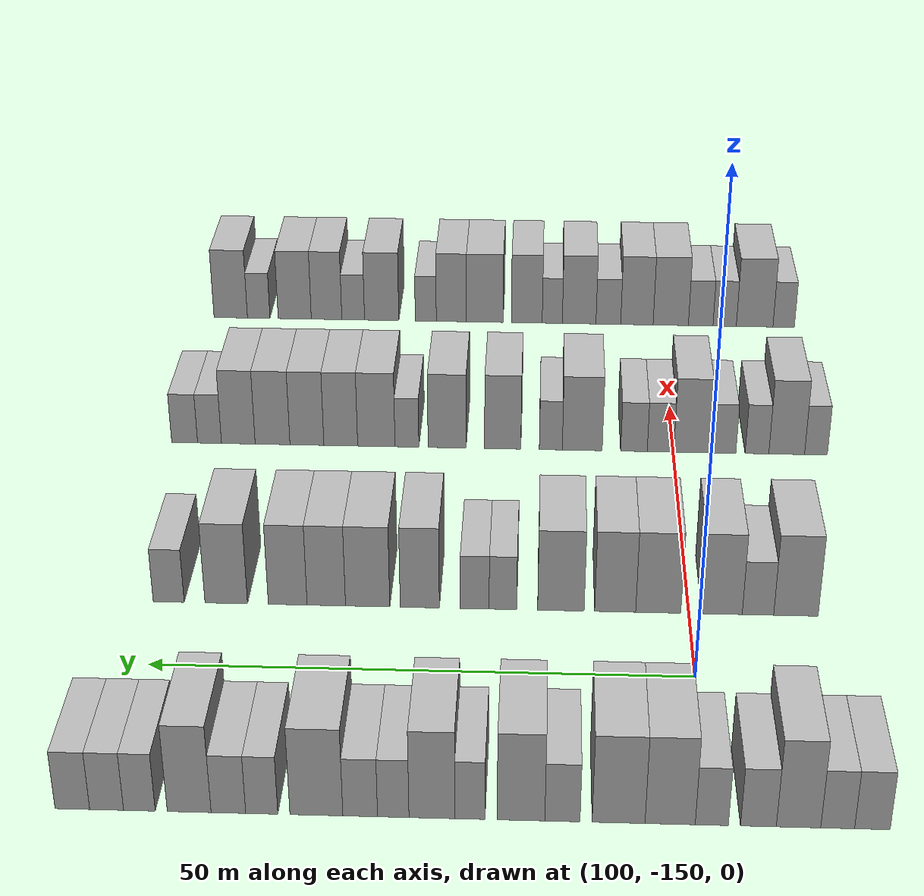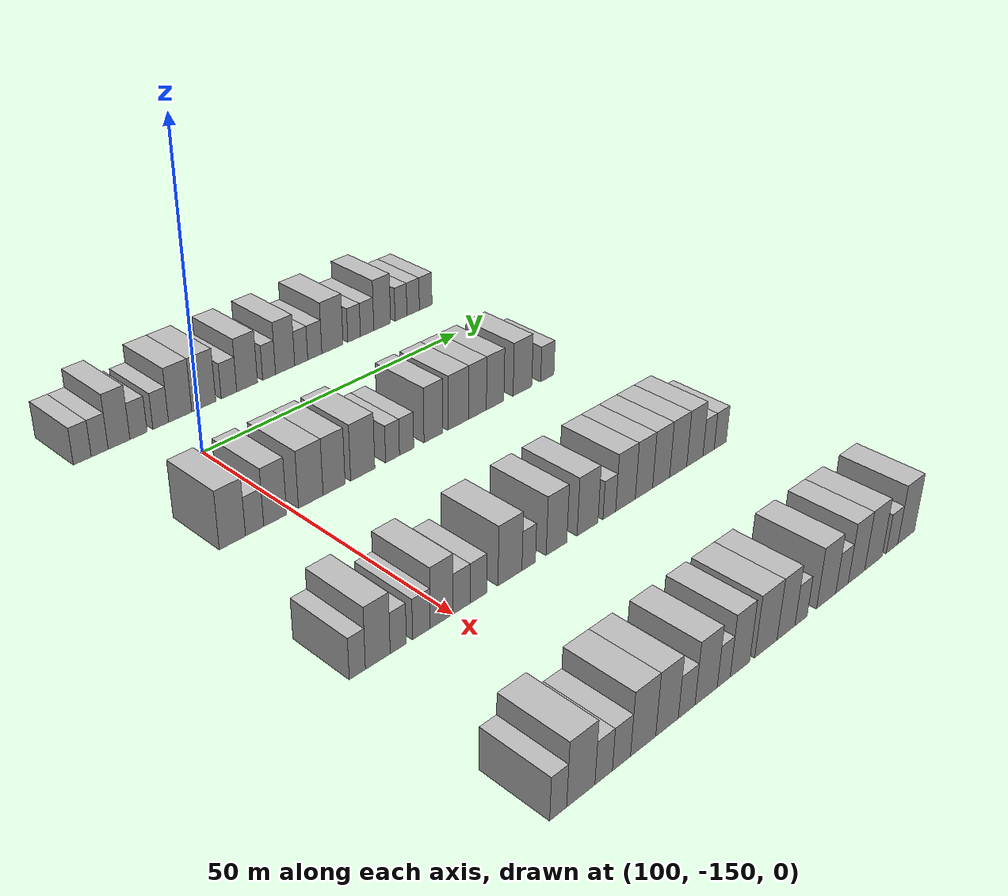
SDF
<sdf version="1.6">
 <world name="default">
  <model name="building_536">
   <static>1</static>
   <pose>85.0000 -163.2497 0 0.000000 0.000000 0.000000</pose>
   <link name="link">
    <pose>0 0 3.00 0 0 0</pose>
    <collision name="collision"><geometry><box><size>10.0000 2.8999 6.0000</size></box></geometry></collision>
    <visual name="visual">
     <cast_shadows>0</cast_shadows>
     <geometry><box><size>10.0000 2.8999 6.0000</size></box></geometry>
     <material>
      <script>
       <uri>model://HANNAS_wall/materials/scripts</uri>
       <uri>model://HANNAS_wall/materials/textures</uri>
       <name>vrc/HANNAS_wall</name>
      </script>
     </material>
    </visual>
   </link>
  </model>
  <model name="building_537">
   <static>1</static>
   <pose>85.0000 -160.4163 0 0.000000 0.000000 0.000000</pose>
   <link name="link">
    <pose>0 0 3.00 0 0 0</pose>
    <collision name="collision"><geometry><box><size>10.0000 2.7669 6.0000</size></box></geometry></collision>
    <visual name="visual">
     <cast_shadows>0</cast_shadows>
     <geometry><box><size>10.0000 2.7669 6.0000</size></box></geometry>
     <material>
      <script>
       <uri>model://HANNAS_wall/materials/scripts</uri>
       <uri>model://HANNAS_wall/materials/textures</uri>
       <name>vrc/HANNAS_wall</name>
      </script>
     </material>
    </visual>
   </link>
  </model>
  <model name="building_538">
   <static>1</static>
   <pose>85.0000 -157.2170 0 0.000000 0.000000 0.000000</pose>
   <link name="link">
    <pose>0 0 4.50 0 0 0</pose>
    <collision name="collision"><geometry><box><size>10.0000 3.6317 9.0000</size></box></geometry></collision>
    <visual name="visual">
     <cast_shadows>0</cast_shadows>
     <geometry><box><size>10.0000 3.6317 9.0000</size></box></geometry>
     <material>
      <script>
       <uri>model://HANNAS_wall/materials/scripts</uri>
       <uri>model://HANNAS_wall/materials/textures</uri>
       <name>vrc/HANNAS_wall</name>
      </script>
     </material>
    </visual>
   </link>
  </model>
  <model name="building_539">
   <static>1</static>
   <pose>85.0000 -153.9380 0 0.000000 0.000000 0.000000</pose>
   <link name="link">
    <pose>0 0 3.00 0 0 0</pose>
    <collision name="collision"><geometry><box><size>10.0000 2.9264 6.0000</size></box></geometry></collision>
    <visual name="visual">
     <cast_shadows>0</cast_shadows>
     <geometry><box><size>10.0000 2.9264 6.0000</size></box></geometry>
     <material>
      <script>
       <uri>model://HANNAS_wall/materials/scripts</uri>
       <uri>model://HANNAS_wall/materials/textures</uri>
       <name>vrc/HANNAS_wall</name>
      </script>
     </material>
    </visual>
   </link>
  </model>
  <model name="building_540">
   <static>1</static>
   <pose>85.0000 -150.1190 0 0.000000 0.000000 0.000000</pose>
   <link name="link">
    <pose>0 0 3.00 0 0 0</pose>
    <collision name="collision"><geometry><box><size>10.0000 2.7117 6.0000</size></box></geometry></collision>
    <visual name="visual">
     <cast_shadows>0</cast_shadows>
     <geometry><box><size>10.0000 2.7117 6.0000</size></box></geometry>
     <material>
      <script>
       <uri>model://HANNAS_wall/materials/scripts</uri>
       <uri>model://HANNAS_wall/materials/textures</uri>
       <name>vrc/HANNAS_wall</name>
      </script>
     </material>
    </visual>
   </link>
  </model>
  <model name="building_541">
   <static>1</static>
   <pose>85.0000 -146.7030 0 0.000000 0.000000 0.000000</pose>
   <link name="link">
    <pose>0 0 4.50 0 0 0</pose>
    <collision name="collision"><geometry><box><size>10.0000 4.1203 9.0000</size></box></geometry></collision>
    <visual name="visual">
     <cast_shadows>0</cast_shadows>
     <geometry><box><size>10.0000 4.1203 9.0000</size></box></geometry>
     <material>
      <script>
       <uri>model://HANNAS_wall/materials/scripts</uri>
       <uri>model://HANNAS_wall/materials/textures</uri>
       <name>vrc/HANNAS_wall</name>
      </script>
     </material>
    </visual>
   </link>
  </model>
  <model name="building_542">
   <static>1</static>
   <pose>85.0000 -142.4680 0 0.000000 0.000000 0.000000</pose>
   <link name="link">
    <pose>0 0 4.50 0 0 0</pose>
    <collision name="collision"><geometry><box><size>10.0000 4.3496 9.0000</size></box></geometry></collision>
    <visual name="visual">
     <cast_shadows>0</cast_shadows>
     <geometry><box><size>10.0000 4.3496 9.0000</size></box></geometry>
     <material>
      <script>
       <uri>model://HANNAS_wall/materials/scripts</uri>
       <uri>model://HANNAS_wall/materials/textures</uri>
       <name>vrc/HANNAS_wall</name>
      </script>
     </material>
    </visual>
   </link>
  </model>
  <model name="building_543">
   <static>1</static>
   <pose>85.0000 -137.8453 0 0.000000 0.000000 0.000000</pose>
   <link name="link">
    <pose>0 0 3.00 0 0 0</pose>
    <collision name="collision"><geometry><box><size>10.0000 2.8957 6.0000</size></box></geometry></collision>
    <visual name="visual">
     <cast_shadows>0</cast_shadows>
     <geometry><box><size>10.0000 2.8957 6.0000</size></box></geometry>
     <material>
      <script>
       <uri>model://HANNAS_wall/materials/scripts</uri>
       <uri>model://HANNAS_wall/materials/textures</uri>
       <name>vrc/HANNAS_wall</name>
      </script>
     </material>
    </visual>
   </link>
  </model>
  <model name="building_544">
   <static>1</static>
   <pose>85.0000 -134.4306 0 0.000000 0.000000 0.000000</pose>
   <link name="link">
    <pose>0 0 4.50 0 0 0</pose>
    <collision name="collision"><geometry><box><size>10.0000 3.9339 9.0000</size></box></geometry></collision>
    <visual name="visual">
     <cast_shadows>0</cast_shadows>
     <geometry><box><size>10.0000 3.9339 9.0000</size></box></geometry>
     <material>
      <script>
       <uri>model://HANNAS_wall/materials/scripts</uri>
       <uri>model://HANNAS_wall/materials/textures</uri>
       <name>vrc/HANNAS_wall</name>
      </script>
     </material>
    </visual>
   </link>
  </model>
  <model name="building_545">
   <static>1</static>
   <pose>85.0000 -130.2196 0 0.000000 0.000000 0.000000</pose>
   <link name="link">
    <pose>0 0 3.00 0 0 0</pose>
    <collision name="collision"><geometry><box><size>10.0000 2.4881 6.0000</size></box></geometry></collision>
    <visual name="visual">
     <cast_shadows>0</cast_shadows>
     <geometry><box><size>10.0000 2.4881 6.0000</size></box></geometry>
     <material>
      <script>
       <uri>model://HANNAS_wall/materials/scripts</uri>
       <uri>model://HANNAS_wall/materials/textures</uri>
       <name>vrc/HANNAS_wall</name>
      </script>
     </material>
    </visual>
   </link>
  </model>
  <model name="building_546">
   <static>1</static>
   <pose>85.0000 -127.0791 0 0.000000 0.000000 0.000000</pose>
   <link name="link">
    <pose>0 0 4.50 0 0 0</pose>
    <collision name="collision"><geometry><box><size>10.0000 3.7929 9.0000</size></box></geometry></collision>
    <visual name="visual">
     <cast_shadows>0</cast_shadows>
     <geometry><box><size>10.0000 3.7929 9.0000</size></box></geometry>
     <material>
      <script>
       <uri>model://HANNAS_wall/materials/scripts</uri>
       <uri>model://HANNAS_wall/materials/textures</uri>
       <name>vrc/HANNAS_wall</name>
      </script>
     </material>
    </visual>
   </link>
  </model>
  <model name="building_547">
   <static>1</static>
   <pose>85.0000 -123.8802 0 0.000000 0.000000 0.000000</pose>
   <link name="link">
    <pose>0 0 3.00 0 0 0</pose>
    <collision name="collision"><geometry><box><size>10.0000 2.6049 6.0000</size></box></geometry></collision>
    <visual name="visual">
     <cast_shadows>0</cast_shadows>
     <geometry><box><size>10.0000 2.6049 6.0000</size></box></geometry>
     <material>
      <script>
       <uri>model://HANNAS_wall/materials/scripts</uri>
       <uri>model://HANNAS_wall/materials/textures</uri>
       <name>vrc/HANNAS_wall</name>
      </script>
     </material>
    </visual>
   </link>
  </model>
  <model name="building_548">
   <static>1</static>
   <pose>85.0000 -121.1402 0 0.000000 0.000000 0.000000</pose>
   <link name="link">
    <pose>0 0 3.00 0 0 0</pose>
    <collision name="collision"><geometry><box><size>10.0000 2.8751 6.0000</size></box></geometry></collision>
    <visual name="visual">
     <cast_shadows>0</cast_shadows>
     <geometry><box><size>10.0000 2.8751 6.0000</size></box></geometry>
     <material>
      <script>
       <uri>model://HANNAS_wall/materials/scripts</uri>
       <uri>model://HANNAS_wall/materials/textures</uri>
       <name>vrc/HANNAS_wall</name>
      </script>
     </material>
    </visual>
   </link>
  </model>
  <model name="building_549">
   <static>1</static>
   <pose>85.0000 -117.5051 0 0.000000 0.000000 0.000000</pose>
   <link name="link">
    <pose>0 0 4.50 0 0 0</pose>
    <collision name="collision"><geometry><box><size>10.0000 4.3952 9.0000</size></box></geometry></collision>
    <visual name="visual">
     <cast_shadows>0</cast_shadows>
     <geometry><box><size>10.0000 4.3952 9.0000</size></box></geometry>
     <material>
      <script>
       <uri>model://HANNAS_wall/materials/scripts</uri>
       <uri>model://HANNAS_wall/materials/textures</uri>
       <name>vrc/HANNAS_wall</name>
      </script>
     </material>
    </visual>
   </link>
  </model>
  <model name="building_550">
   <static>1</static>
   <pose>85.0000 -112.9700 0 0.000000 0.000000 0.000000</pose>
   <link name="link">
    <pose>0 0 3.00 0 0 0</pose>
    <collision name="collision"><geometry><box><size>10.0000 2.6750 6.0000</size></box></geometry></collision>
    <visual name="visual">
     <cast_shadows>0</cast_shadows>
     <geometry><box><size>10.0000 2.6750 6.0000</size></box></geometry>
     <material>
      <script>
       <uri>model://HANNAS_wall/materials/scripts</uri>
       <uri>model://HANNAS_wall/materials/textures</uri>
       <name>vrc/HANNAS_wall</name>
      </script>
     </material>
    </visual>
   </link>
  </model>
  <model name="building_551">
   <static>1</static>
   <pose>85.0000 -110.1926 0 0.000000 0.000000 0.000000</pose>
   <link name="link">
    <pose>0 0 3.00 0 0 0</pose>
    <collision name="collision"><geometry><box><size>10.0000 2.8800 6.0000</size></box></geometry></collision>
    <visual name="visual">
     <cast_shadows>0</cast_shadows>
     <geometry><box><size>10.0000 2.8800 6.0000</size></box></geometry>
     <material>
      <script>
       <uri>model://HANNAS_wall/materials/scripts</uri>
       <uri>model://HANNAS_wall/materials/textures</uri>
       <name>vrc/HANNAS_wall</name>
      </script>
     </material>
    </visual>
   </link>
  </model>
  <model name="building_552">
   <static>1</static>
   <pose>85.0000 -106.9245 0 0.000000 0.000000 0.000000</pose>
   <link name="link">
    <pose>0 0 4.50 0 0 0</pose>
    <collision name="collision"><geometry><box><size>10.0000 3.6561 9.0000</size></box></geometry></collision>
    <visual name="visual">
     <cast_shadows>0</cast_shadows>
     <geometry><box><size>10.0000 3.6561 9.0000</size></box></geometry>
     <material>
      <script>
       <uri>model://HANNAS_wall/materials/scripts</uri>
       <uri>model://HANNAS_wall/materials/textures</uri>
       <name>vrc/HANNAS_wall</name>
      </script>
     </material>
    </visual>
   </link>
  </model>
  <model name="building_553">
   <static>1</static>
   <pose>85.0000 -102.7746 0 0.000000 0.000000 0.000000</pose>
   <link name="link">
    <pose>0 0 3.00 0 0 0</pose>
    <collision name="collision"><geometry><box><size>10.0000 2.6438 6.0000</size></box></geometry></collision>
    <visual name="visual">
     <cast_shadows>0</cast_shadows>
     <geometry><box><size>10.0000 2.6438 6.0000</size></box></geometry>
     <material>
      <script>
       <uri>model://HANNAS_wall/materials/scripts</uri>
       <uri>model://HANNAS_wall/materials/textures</uri>
       <name>vrc/HANNAS_wall</name>
      </script>
     </material>
    </visual>
   </link>
  </model>
  <model name="building_554">
   <static>1</static>
   <pose>85.0000 -100.0348 0 0.000000 0.000000 0.000000</pose>
   <link name="link">
    <pose>0 0 3.00 0 0 0</pose>
    <collision name="collision"><geometry><box><size>10.0000 2.8359 6.0000</size></box></geometry></collision>
    <visual name="visual">
     <cast_shadows>0</cast_shadows>
     <geometry><box><size>10.0000 2.8359 6.0000</size></box></geometry>
     <material>
      <script>
       <uri>model://HANNAS_wall/materials/scripts</uri>
       <uri>model://HANNAS_wall/materials/textures</uri>
       <name>vrc/HANNAS_wall</name>
      </script>
     </material>
    </visual>
   </link>
  </model>
  <model name="building_555">
   <static>1</static>
   <pose>85.0000 -97.1692 0 0.000000 0.000000 0.000000</pose>
   <link name="link">
    <pose>0 0 3.00 0 0 0</pose>
    <collision name="collision"><geometry><box><size>10.0000 2.8953 6.0000</size></box></geometry></collision>
    <visual name="visual">
     <cast_shadows>0</cast_shadows>
     <geometry><box><size>10.0000 2.8953 6.0000</size></box></geometry>
     <material>
      <script>
       <uri>model://HANNAS_wall/materials/scripts</uri>
       <uri>model://HANNAS_wall/materials/textures</uri>
       <name>vrc/HANNAS_wall</name>
      </script>
     </material>
    </visual>
   </link>
  </model>
  <model name="building_768">
   <static>1</static>
   <pose>115.0000 -160.0468 0 0.000000 0.000000 0.000000</pose>
   <link name="link">
    <pose>0 0 4.50 0 0 0</pose>
    <collision name="collision"><geometry><box><size>10.0000 4.1963 9.0000</size></box></geometry></collision>
    <visual name="visual">
     <cast_shadows>0</cast_shadows>
     <geometry><box><size>10.0000 4.1963 9.0000</size></box></geometry>
     <material>
      <script>
       <uri>model://HANNAS_wall/materials/scripts</uri>
       <uri>model://HANNAS_wall/materials/textures</uri>
       <name>vrc/HANNAS_wall</name>
      </script>
     </material>
    </visual>
   </link>
  </model>
  <model name="building_769">
   <static>1</static>
   <pose>115.0000 -156.4593 0 0.000000 0.000000 0.000000</pose>
   <link name="link">
    <pose>0 0 3.00 0 0 0</pose>
    <collision name="collision"><geometry><box><size>10.0000 2.9786 6.0000</size></box></geometry></collision>
    <visual name="visual">
     <cast_shadows>0</cast_shadows>
     <geometry><box><size>10.0000 2.9786 6.0000</size></box></geometry>
     <material>
      <script>
       <uri>model://HANNAS_wall/materials/scripts</uri>
       <uri>model://HANNAS_wall/materials/textures</uri>
       <name>vrc/HANNAS_wall</name>
      </script>
     </material>
    </visual>
   </link>
  </model>
  <model name="building_770">
   <static>1</static>
   <pose>115.0000 -153.0598 0 0.000000 0.000000 0.000000</pose>
   <link name="link">
    <pose>0 0 4.50 0 0 0</pose>
    <collision name="collision"><geometry><box><size>10.0000 3.8205 9.0000</size></box></geometry></collision>
    <visual name="visual">
     <cast_shadows>0</cast_shadows>
     <geometry><box><size>10.0000 3.8205 9.0000</size></box></geometry>
     <material>
      <script>
       <uri>model://HANNAS_wall/materials/scripts</uri>
       <uri>model://HANNAS_wall/materials/textures</uri>
       <name>vrc/HANNAS_wall</name>
      </script>
     </material>
    </visual>
   </link>
  </model>
  <model name="building_771">
   <static>1</static>
   <pose>115.0000 -147.0103 0 0.000000 0.000000 0.000000</pose>
   <link name="link">
    <pose>0 0 4.50 0 0 0</pose>
    <collision name="collision"><geometry><box><size>10.0000 4.2784 9.0000</size></box></geometry></collision>
    <visual name="visual">
     <cast_shadows>0</cast_shadows>
     <geometry><box><size>10.0000 4.2784 9.0000</size></box></geometry>
     <material>
      <script>
       <uri>model://HANNAS_wall/materials/scripts</uri>
       <uri>model://HANNAS_wall/materials/textures</uri>
       <name>vrc/HANNAS_wall</name>
      </script>
     </material>
    </visual>
   </link>
  </model>
  <model name="building_772">
   <static>1</static>
   <pose>115.0000 -142.9203 0 0.000000 0.000000 0.000000</pose>
   <link name="link">
    <pose>0 0 4.50 0 0 0</pose>
    <collision name="collision"><geometry><box><size>10.0000 3.9017 9.0000</size></box></geometry></collision>
    <visual name="visual">
     <cast_shadows>0</cast_shadows>
     <geometry><box><size>10.0000 3.9017 9.0000</size></box></geometry>
     <material>
      <script>
       <uri>model://HANNAS_wall/materials/scripts</uri>
       <uri>model://HANNAS_wall/materials/textures</uri>
       <name>vrc/HANNAS_wall</name>
      </script>
     </material>
    </visual>
   </link>
  </model>
  <model name="building_773">
   <static>1</static>
   <pose>115.0000 -137.7577 0 0.000000 0.000000 0.000000</pose>
   <link name="link">
    <pose>0 0 4.50 0 0 0</pose>
    <collision name="collision"><geometry><box><size>10.0000 4.4236 9.0000</size></box></geometry></collision>
    <visual name="visual">
     <cast_shadows>0</cast_shadows>
     <geometry><box><size>10.0000 4.4236 9.0000</size></box></geometry>
     <material>
      <script>
       <uri>model://HANNAS_wall/materials/scripts</uri>
       <uri>model://HANNAS_wall/materials/textures</uri>
       <name>vrc/HANNAS_wall</name>
      </script>
     </material>
    </visual>
   </link>
  </model>
  <model name="building_774">
   <static>1</static>
   <pose>115.0000 -132.2318 0 0.000000 0.000000 0.000000</pose>
   <link name="link">
    <pose>0 0 3.00 0 0 0</pose>
    <collision name="collision"><geometry><box><size>10.0000 2.6282 6.0000</size></box></geometry></collision>
    <visual name="visual">
     <cast_shadows>0</cast_shadows>
     <geometry><box><size>10.0000 2.6282 6.0000</size></box></geometry>
     <material>
      <script>
       <uri>model://HANNAS_wall/materials/scripts</uri>
       <uri>model://HANNAS_wall/materials/textures</uri>
       <name>vrc/HANNAS_wall</name>
      </script>
     </material>
    </visual>
   </link>
  </model>
  <model name="building_775">
   <static>1</static>
   <pose>115.0000 -129.5425 0 0.000000 0.000000 0.000000</pose>
   <link name="link">
    <pose>0 0 3.00 0 0 0</pose>
    <collision name="collision"><geometry><box><size>10.0000 2.7503 6.0000</size></box></geometry></collision>
    <visual name="visual">
     <cast_shadows>0</cast_shadows>
     <geometry><box><size>10.0000 2.7503 6.0000</size></box></geometry>
     <material>
      <script>
       <uri>model://HANNAS_wall/materials/scripts</uri>
       <uri>model://HANNAS_wall/materials/textures</uri>
       <name>vrc/HANNAS_wall</name>
      </script>
     </material>
    </visual>
   </link>
  </model>
  <model name="building_776">
   <static>1</static>
   <pose>115.0000 -124.2981 0 0.000000 0.000000 0.000000</pose>
   <link name="link">
    <pose>0 0 4.50 0 0 0</pose>
    <collision name="collision"><geometry><box><size>10.0000 3.7386 9.0000</size></box></geometry></collision>
    <visual name="visual">
     <cast_shadows>0</cast_shadows>
     <geometry><box><size>10.0000 3.7386 9.0000</size></box></geometry>
     <material>
      <script>
       <uri>model://HANNAS_wall/materials/scripts</uri>
       <uri>model://HANNAS_wall/materials/textures</uri>
       <name>vrc/HANNAS_wall</name>
      </script>
     </material>
    </visual>
   </link>
  </model>
  <model name="building_777">
   <static>1</static>
   <pose>115.0000 -119.3076 0 0.000000 0.000000 0.000000</pose>
   <link name="link">
    <pose>0 0 4.50 0 0 0</pose>
    <collision name="collision"><geometry><box><size>10.0000 4.2423 9.0000</size></box></geometry></collision>
    <visual name="visual">
     <cast_shadows>0</cast_shadows>
     <geometry><box><size>10.0000 4.2423 9.0000</size></box></geometry>
     <material>
      <script>
       <uri>model://HANNAS_wall/materials/scripts</uri>
       <uri>model://HANNAS_wall/materials/textures</uri>
       <name>vrc/HANNAS_wall</name>
      </script>
     </material>
    </visual>
   </link>
  </model>
  <model name="building_778">
   <static>1</static>
   <pose>115.0000 -115.3450 0 0.000000 0.000000 0.000000</pose>
   <link name="link">
    <pose>0 0 4.50 0 0 0</pose>
    <collision name="collision"><geometry><box><size>10.0000 3.6828 9.0000</size></box></geometry></collision>
    <visual name="visual">
     <cast_shadows>0</cast_shadows>
     <geometry><box><size>10.0000 3.6828 9.0000</size></box></geometry>
     <material>
      <script>
       <uri>model://HANNAS_wall/materials/scripts</uri>
       <uri>model://HANNAS_wall/materials/textures</uri>
       <name>vrc/HANNAS_wall</name>
      </script>
     </material>
    </visual>
   </link>
  </model>
  <model name="building_779">
   <static>1</static>
   <pose>115.0000 -111.6411 0 0.000000 0.000000 0.000000</pose>
   <link name="link">
    <pose>0 0 4.50 0 0 0</pose>
    <collision name="collision"><geometry><box><size>10.0000 3.7251 9.0000</size></box></geometry></collision>
    <visual name="visual">
     <cast_shadows>0</cast_shadows>
     <geometry><box><size>10.0000 3.7251 9.0000</size></box></geometry>
     <material>
      <script>
       <uri>model://HANNAS_wall/materials/scripts</uri>
       <uri>model://HANNAS_wall/materials/textures</uri>
       <name>vrc/HANNAS_wall</name>
      </script>
     </material>
    </visual>
   </link>
  </model>
  <model name="building_780">
   <static>1</static>
   <pose>115.0000 -105.7306 0 0.000000 0.000000 0.000000</pose>
   <link name="link">
    <pose>0 0 4.50 0 0 0</pose>
    <collision name="collision"><geometry><box><size>10.0000 4.0958 9.0000</size></box></geometry></collision>
    <visual name="visual">
     <cast_shadows>0</cast_shadows>
     <geometry><box><size>10.0000 4.0958 9.0000</size></box></geometry>
     <material>
      <script>
       <uri>model://HANNAS_wall/materials/scripts</uri>
       <uri>model://HANNAS_wall/materials/textures</uri>
       <name>vrc/HANNAS_wall</name>
      </script>
     </material>
    </visual>
   </link>
  </model>
  <model name="building_781">
   <static>1</static>
   <pose>115.0000 -100.1899 0 0.000000 0.000000 0.000000</pose>
   <link name="link">
    <pose>0 0 3.00 0 0 0</pose>
    <collision name="collision"><geometry><box><size>10.0000 2.9856 6.0000</size></box></geometry></collision>
    <visual name="visual">
     <cast_shadows>0</cast_shadows>
     <geometry><box><size>10.0000 2.9856 6.0000</size></box></geometry>
     <material>
      <script>
       <uri>model://HANNAS_wall/materials/scripts</uri>
       <uri>model://HANNAS_wall/materials/textures</uri>
       <name>vrc/HANNAS_wall</name>
      </script>
     </material>
    </visual>
   </link>
  </model>
  <model name="building_988">
   <static>1</static>
   <pose>145.0000 -165.2398 0 0.000000 0.000000 0.000000</pose>
   <link name="link">
    <pose>0 0 3.00 0 0 0</pose>
    <collision name="collision"><geometry><box><size>10.0000 2.4434 6.0000</size></box></geometry></collision>
    <visual name="visual">
     <cast_shadows>0</cast_shadows>
     <geometry><box><size>10.0000 2.4434 6.0000</size></box></geometry>
     <material>
      <script>
       <uri>model://HANNAS_wall/materials/scripts</uri>
       <uri>model://HANNAS_wall/materials/textures</uri>
       <name>vrc/HANNAS_wall</name>
      </script>
     </material>
    </visual>
   </link>
  </model>
  <model name="building_989">
   <static>1</static>
   <pose>145.0000 -162.1028 0 0.000000 0.000000 0.000000</pose>
   <link name="link">
    <pose>0 0 4.50 0 0 0</pose>
    <collision name="collision"><geometry><box><size>10.0000 3.8306 9.0000</size></box></geometry></collision>
    <visual name="visual">
     <cast_shadows>0</cast_shadows>
     <geometry><box><size>10.0000 3.8306 9.0000</size></box></geometry>
     <material>
      <script>
       <uri>model://HANNAS_wall/materials/scripts</uri>
       <uri>model://HANNAS_wall/materials/textures</uri>
       <name>vrc/HANNAS_wall</name>
      </script>
     </material>
    </visual>
   </link>
  </model>
  <model name="building_990">
   <static>1</static>
   <pose>145.0000 -158.9182 0 0.000000 0.000000 0.000000</pose>
   <link name="link">
    <pose>0 0 3.00 0 0 0</pose>
    <collision name="collision"><geometry><box><size>10.0000 2.5386 6.0000</size></box></geometry></collision>
    <visual name="visual">
     <cast_shadows>0</cast_shadows>
     <geometry><box><size>10.0000 2.5386 6.0000</size></box></geometry>
     <material>
      <script>
       <uri>model://HANNAS_wall/materials/scripts</uri>
       <uri>model://HANNAS_wall/materials/textures</uri>
       <name>vrc/HANNAS_wall</name>
      </script>
     </material>
    </visual>
   </link>
  </model>
  <model name="building_991">
   <static>1</static>
   <pose>145.0000 -155.2212 0 0.000000 0.000000 0.000000</pose>
   <link name="link">
    <pose>0 0 3.00 0 0 0</pose>
    <collision name="collision"><geometry><box><size>10.0000 2.8556 6.0000</size></box></geometry></collision>
    <visual name="visual">
     <cast_shadows>0</cast_shadows>
     <geometry><box><size>10.0000 2.8556 6.0000</size></box></geometry>
     <material>
      <script>
       <uri>model://HANNAS_wall/materials/scripts</uri>
       <uri>model://HANNAS_wall/materials/textures</uri>
       <name>vrc/HANNAS_wall</name>
      </script>
     </material>
    </visual>
   </link>
  </model>
  <model name="building_992">
   <static>1</static>
   <pose>145.0000 -151.8827 0 0.000000 0.000000 0.000000</pose>
   <link name="link">
    <pose>0 0 4.50 0 0 0</pose>
    <collision name="collision"><geometry><box><size>10.0000 3.8213 9.0000</size></box></geometry></collision>
    <visual name="visual">
     <cast_shadows>0</cast_shadows>
     <geometry><box><size>10.0000 3.8213 9.0000</size></box></geometry>
     <material>
      <script>
       <uri>model://HANNAS_wall/materials/scripts</uri>
       <uri>model://HANNAS_wall/materials/textures</uri>
       <name>vrc/HANNAS_wall</name>
      </script>
     </material>
    </visual>
   </link>
  </model>
  <model name="building_993">
   <static>1</static>
   <pose>145.0000 -148.5395 0 0.000000 0.000000 0.000000</pose>
   <link name="link">
    <pose>0 0 3.00 0 0 0</pose>
    <collision name="collision"><geometry><box><size>10.0000 2.8652 6.0000</size></box></geometry></collision>
    <visual name="visual">
     <cast_shadows>0</cast_shadows>
     <geometry><box><size>10.0000 2.8652 6.0000</size></box></geometry>
     <material>
      <script>
       <uri>model://HANNAS_wall/materials/scripts</uri>
       <uri>model://HANNAS_wall/materials/textures</uri>
       <name>vrc/HANNAS_wall</name>
      </script>
     </material>
    </visual>
   </link>
  </model>
  <model name="building_994">
   <static>1</static>
   <pose>145.0000 -145.6789 0 0.000000 0.000000 0.000000</pose>
   <link name="link">
    <pose>0 0 3.00 0 0 0</pose>
    <collision name="collision"><geometry><box><size>10.0000 2.8560 6.0000</size></box></geometry></collision>
    <visual name="visual">
     <cast_shadows>0</cast_shadows>
     <geometry><box><size>10.0000 2.8560 6.0000</size></box></geometry>
     <material>
      <script>
       <uri>model://HANNAS_wall/materials/scripts</uri>
       <uri>model://HANNAS_wall/materials/textures</uri>
       <name>vrc/HANNAS_wall</name>
      </script>
     </material>
    </visual>
   </link>
  </model>
  <model name="building_995">
   <static>1</static>
   <pose>145.0000 -140.0975 0 0.000000 0.000000 0.000000</pose>
   <link name="link">
    <pose>0 0 4.50 0 0 0</pose>
    <collision name="collision"><geometry><box><size>10.0000 4.3067 9.0000</size></box></geometry></collision>
    <visual name="visual">
     <cast_shadows>0</cast_shadows>
     <geometry><box><size>10.0000 4.3067 9.0000</size></box></geometry>
     <material>
      <script>
       <uri>model://HANNAS_wall/materials/scripts</uri>
       <uri>model://HANNAS_wall/materials/textures</uri>
       <name>vrc/HANNAS_wall</name>
      </script>
     </material>
    </visual>
   </link>
  </model>
  <model name="building_996">
   <static>1</static>
   <pose>145.0000 -136.7036 0 0.000000 0.000000 0.000000</pose>
   <link name="link">
    <pose>0 0 3.00 0 0 0</pose>
    <collision name="collision"><geometry><box><size>10.0000 2.4812 6.0000</size></box></geometry></collision>
    <visual name="visual">
     <cast_shadows>0</cast_shadows>
     <geometry><box><size>10.0000 2.4812 6.0000</size></box></geometry>
     <material>
      <script>
       <uri>model://HANNAS_wall/materials/scripts</uri>
       <uri>model://HANNAS_wall/materials/textures</uri>
       <name>vrc/HANNAS_wall</name>
      </script>
     </material>
    </visual>
   </link>
  </model>
  <model name="building_997">
   <static>1</static>
   <pose>145.0000 -131.5014 0 0.000000 0.000000 0.000000</pose>
   <link name="link">
    <pose>0 0 4.50 0 0 0</pose>
    <collision name="collision"><geometry><box><size>10.0000 3.9231 9.0000</size></box></geometry></collision>
    <visual name="visual">
     <cast_shadows>0</cast_shadows>
     <geometry><box><size>10.0000 3.9231 9.0000</size></box></geometry>
     <material>
      <script>
       <uri>model://HANNAS_wall/materials/scripts</uri>
       <uri>model://HANNAS_wall/materials/textures</uri>
       <name>vrc/HANNAS_wall</name>
      </script>
     </material>
    </visual>
   </link>
  </model>
  <model name="building_998">
   <static>1</static>
   <pose>145.0000 -125.4801 0 0.000000 0.000000 0.000000</pose>
   <link name="link">
    <pose>0 0 4.50 0 0 0</pose>
    <collision name="collision"><geometry><box><size>10.0000 4.1195 9.0000</size></box></geometry></collision>
    <visual name="visual">
     <cast_shadows>0</cast_shadows>
     <geometry><box><size>10.0000 4.1195 9.0000</size></box></geometry>
     <material>
      <script>
       <uri>model://HANNAS_wall/materials/scripts</uri>
       <uri>model://HANNAS_wall/materials/textures</uri>
       <name>vrc/HANNAS_wall</name>
      </script>
     </material>
    </visual>
   </link>
  </model>
  <model name="building_999">
   <static>1</static>
   <pose>145.0000 -121.1249 0 0.000000 0.000000 0.000000</pose>
   <link name="link">
    <pose>0 0 3.00 0 0 0</pose>
    <collision name="collision"><geometry><box><size>10.0000 2.5909 6.0000</size></box></geometry></collision>
    <visual name="visual">
     <cast_shadows>0</cast_shadows>
     <geometry><box><size>10.0000 2.5909 6.0000</size></box></geometry>
     <material>
      <script>
       <uri>model://HANNAS_wall/materials/scripts</uri>
       <uri>model://HANNAS_wall/materials/textures</uri>
       <name>vrc/HANNAS_wall</name>
      </script>
     </material>
    </visual>
   </link>
  </model>
  <model name="building_1000">
   <static>1</static>
   <pose>145.0000 -117.7997 0 0.000000 0.000000 0.000000</pose>
   <link name="link">
    <pose>0 0 4.50 0 0 0</pose>
    <collision name="collision"><geometry><box><size>10.0000 4.0594 9.0000</size></box></geometry></collision>
    <visual name="visual">
     <cast_shadows>0</cast_shadows>
     <geometry><box><size>10.0000 4.0594 9.0000</size></box></geometry>
     <material>
      <script>
       <uri>model://HANNAS_wall/materials/scripts</uri>
       <uri>model://HANNAS_wall/materials/textures</uri>
       <name>vrc/HANNAS_wall</name>
      </script>
     </material>
    </visual>
   </link>
  </model>
  <model name="building_1001">
   <static>1</static>
   <pose>145.0000 -113.9328 0 0.000000 0.000000 0.000000</pose>
   <link name="link">
    <pose>0 0 4.50 0 0 0</pose>
    <collision name="collision"><geometry><box><size>10.0000 3.6746 9.0000</size></box></geometry></collision>
    <visual name="visual">
     <cast_shadows>0</cast_shadows>
     <geometry><box><size>10.0000 3.6746 9.0000</size></box></geometry>
     <material>
      <script>
       <uri>model://HANNAS_wall/materials/scripts</uri>
       <uri>model://HANNAS_wall/materials/textures</uri>
       <name>vrc/HANNAS_wall</name>
      </script>
     </material>
    </visual>
   </link>
  </model>
  <model name="building_1002">
   <static>1</static>
   <pose>145.0000 -110.2477 0 0.000000 0.000000 0.000000</pose>
   <link name="link">
    <pose>0 0 4.50 0 0 0</pose>
    <collision name="collision"><geometry><box><size>10.0000 3.6955 9.0000</size></box></geometry></collision>
    <visual name="visual">
     <cast_shadows>0</cast_shadows>
     <geometry><box><size>10.0000 3.6955 9.0000</size></box></geometry>
     <material>
      <script>
       <uri>model://HANNAS_wall/materials/scripts</uri>
       <uri>model://HANNAS_wall/materials/textures</uri>
       <name>vrc/HANNAS_wall</name>
      </script>
     </material>
    </visual>
   </link>
  </model>
  <model name="building_1003">
   <static>1</static>
   <pose>145.0000 -106.5018 0 0.000000 0.000000 0.000000</pose>
   <link name="link">
    <pose>0 0 4.50 0 0 0</pose>
    <collision name="collision"><geometry><box><size>10.0000 3.7962 9.0000</size></box></geometry></collision>
    <visual name="visual">
     <cast_shadows>0</cast_shadows>
     <geometry><box><size>10.0000 3.7962 9.0000</size></box></geometry>
     <material>
      <script>
       <uri>model://HANNAS_wall/materials/scripts</uri>
       <uri>model://HANNAS_wall/materials/textures</uri>
       <name>vrc/HANNAS_wall</name>
      </script>
     </material>
    </visual>
   </link>
  </model>
  <model name="building_1004">
   <static>1</static>
   <pose>145.0000 -102.7652 0 0.000000 0.000000 0.000000</pose>
   <link name="link">
    <pose>0 0 4.50 0 0 0</pose>
    <collision name="collision"><geometry><box><size>10.0000 3.6770 9.0000</size></box></geometry></collision>
    <visual name="visual">
     <cast_shadows>0</cast_shadows>
     <geometry><box><size>10.0000 3.6770 9.0000</size></box></geometry>
     <material>
      <script>
       <uri>model://HANNAS_wall/materials/scripts</uri>
       <uri>model://HANNAS_wall/materials/textures</uri>
       <name>vrc/HANNAS_wall</name>
      </script>
     </material>
    </visual>
   </link>
  </model>
  <model name="building_1005">
   <static>1</static>
   <pose>145.0000 -99.6220 0 0.000000 0.000000 0.000000</pose>
   <link name="link">
    <pose>0 0 3.00 0 0 0</pose>
    <collision name="collision"><geometry><box><size>10.0000 2.6096 6.0000</size></box></geometry></collision>
    <visual name="visual">
     <cast_shadows>0</cast_shadows>
     <geometry><box><size>10.0000 2.6096 6.0000</size></box></geometry>
     <material>
      <script>
       <uri>model://HANNAS_wall/materials/scripts</uri>
       <uri>model://HANNAS_wall/materials/textures</uri>
       <name>vrc/HANNAS_wall</name>
      </script>
     </material>
    </visual>
   </link>
  </model>
  <model name="building_1006">
   <static>1</static>
   <pose>145.0000 -96.9014 0 0.000000 0.000000 0.000000</pose>
   <link name="link">
    <pose>0 0 3.00 0 0 0</pose>
    <collision name="collision"><geometry><box><size>10.0000 2.8315 6.0000</size></box></geometry></collision>
    <visual name="visual">
     <cast_shadows>0</cast_shadows>
     <geometry><box><size>10.0000 2.8315 6.0000</size></box></geometry>
     <material>
      <script>
       <uri>model://HANNAS_wall/materials/scripts</uri>
       <uri>model://HANNAS_wall/materials/textures</uri>
       <name>vrc/HANNAS_wall</name>
      </script>
     </material>
    </visual>
   </link>
  </model>
  <model name="building_1215">
   <static>1</static>
   <pose>175.0000 -164.6649 0 0.000000 0.000000 0.000000</pose>
   <link name="link">
    <pose>0 0 3.00 0 0 0</pose>
    <collision name="collision"><geometry><box><size>10.0000 2.5733 6.0000</size></box></geometry></collision>
    <visual name="visual">
     <cast_shadows>0</cast_shadows>
     <geometry><box><size>10.0000 2.5733 6.0000</size></box></geometry>
     <material>
      <script>
       <uri>model://HANNAS_wall/materials/scripts</uri>
       <uri>model://HANNAS_wall/materials/textures</uri>
       <name>vrc/HANNAS_wall</name>
      </script>
     </material>
    </visual>
   </link>
  </model>
  <model name="building_1216">
   <static>1</static>
   <pose>175.0000 -161.1781 0 0.000000 0.000000 0.000000</pose>
   <link name="link">
    <pose>0 0 4.50 0 0 0</pose>
    <collision name="collision"><geometry><box><size>10.0000 4.4004 9.0000</size></box></geometry></collision>
    <visual name="visual">
     <cast_shadows>0</cast_shadows>
     <geometry><box><size>10.0000 4.4004 9.0000</size></box></geometry>
     <material>
      <script>
       <uri>model://HANNAS_wall/materials/scripts</uri>
       <uri>model://HANNAS_wall/materials/textures</uri>
       <name>vrc/HANNAS_wall</name>
      </script>
     </material>
    </visual>
   </link>
  </model>
  <model name="building_1217">
   <static>1</static>
   <pose>175.0000 -157.5769 0 0.000000 0.000000 0.000000</pose>
   <link name="link">
    <pose>0 0 3.00 0 0 0</pose>
    <collision name="collision"><geometry><box><size>10.0000 2.8020 6.0000</size></box></geometry></collision>
    <visual name="visual">
     <cast_shadows>0</cast_shadows>
     <geometry><box><size>10.0000 2.8020 6.0000</size></box></geometry>
     <material>
      <script>
       <uri>model://HANNAS_wall/materials/scripts</uri>
       <uri>model://HANNAS_wall/materials/textures</uri>
       <name>vrc/HANNAS_wall</name>
      </script>
     </material>
    </visual>
   </link>
  </model>
  <model name="building_1218">
   <static>1</static>
   <pose>175.0000 -154.6934 0 0.000000 0.000000 0.000000</pose>
   <link name="link">
    <pose>0 0 3.00 0 0 0</pose>
    <collision name="collision"><geometry><box><size>10.0000 2.9648 6.0000</size></box></geometry></collision>
    <visual name="visual">
     <cast_shadows>0</cast_shadows>
     <geometry><box><size>10.0000 2.9648 6.0000</size></box></geometry>
     <material>
      <script>
       <uri>model://HANNAS_wall/materials/scripts</uri>
       <uri>model://HANNAS_wall/materials/textures</uri>
       <name>vrc/HANNAS_wall</name>
      </script>
     </material>
    </visual>
   </link>
  </model>
  <model name="building_1219">
   <static>1</static>
   <pose>175.0000 -151.0883 0 0.000000 0.000000 0.000000</pose>
   <link name="link">
    <pose>0 0 4.50 0 0 0</pose>
    <collision name="collision"><geometry><box><size>10.0000 4.2455 9.0000</size></box></geometry></collision>
    <visual name="visual">
     <cast_shadows>0</cast_shadows>
     <geometry><box><size>10.0000 4.2455 9.0000</size></box></geometry>
     <material>
      <script>
       <uri>model://HANNAS_wall/materials/scripts</uri>
       <uri>model://HANNAS_wall/materials/textures</uri>
       <name>vrc/HANNAS_wall</name>
      </script>
     </material>
    </visual>
   </link>
  </model>
  <model name="building_1220">
   <static>1</static>
   <pose>175.0000 -147.0064 0 0.000000 0.000000 0.000000</pose>
   <link name="link">
    <pose>0 0 4.50 0 0 0</pose>
    <collision name="collision"><geometry><box><size>10.0000 3.9182 9.0000</size></box></geometry></collision>
    <visual name="visual">
     <cast_shadows>0</cast_shadows>
     <geometry><box><size>10.0000 3.9182 9.0000</size></box></geometry>
     <material>
      <script>
       <uri>model://HANNAS_wall/materials/scripts</uri>
       <uri>model://HANNAS_wall/materials/textures</uri>
       <name>vrc/HANNAS_wall</name>
      </script>
     </material>
    </visual>
   </link>
  </model>
  <model name="building_1221">
   <static>1</static>
   <pose>175.0000 -143.5573 0 0.000000 0.000000 0.000000</pose>
   <link name="link">
    <pose>0 0 3.00 0 0 0</pose>
    <collision name="collision"><geometry><box><size>10.0000 2.9799 6.0000</size></box></geometry></collision>
    <visual name="visual">
     <cast_shadows>0</cast_shadows>
     <geometry><box><size>10.0000 2.9799 6.0000</size></box></geometry>
     <material>
      <script>
       <uri>model://HANNAS_wall/materials/scripts</uri>
       <uri>model://HANNAS_wall/materials/textures</uri>
       <name>vrc/HANNAS_wall</name>
      </script>
     </material>
    </visual>
   </link>
  </model>
  <model name="building_1222">
   <static>1</static>
   <pose>175.0000 -140.0333 0 0.000000 0.000000 0.000000</pose>
   <link name="link">
    <pose>0 0 4.50 0 0 0</pose>
    <collision name="collision"><geometry><box><size>10.0000 4.0681 9.0000</size></box></geometry></collision>
    <visual name="visual">
     <cast_shadows>0</cast_shadows>
     <geometry><box><size>10.0000 4.0681 9.0000</size></box></geometry>
     <material>
      <script>
       <uri>model://HANNAS_wall/materials/scripts</uri>
       <uri>model://HANNAS_wall/materials/textures</uri>
       <name>vrc/HANNAS_wall</name>
      </script>
     </material>
    </visual>
   </link>
  </model>
  <model name="building_1223">
   <static>1</static>
   <pose>175.0000 -136.7837 0 0.000000 0.000000 0.000000</pose>
   <link name="link">
    <pose>0 0 3.00 0 0 0</pose>
    <collision name="collision"><geometry><box><size>10.0000 2.4312 6.0000</size></box></geometry></collision>
    <visual name="visual">
     <cast_shadows>0</cast_shadows>
     <geometry><box><size>10.0000 2.4312 6.0000</size></box></geometry>
     <material>
      <script>
       <uri>model://HANNAS_wall/materials/scripts</uri>
       <uri>model://HANNAS_wall/materials/textures</uri>
       <name>vrc/HANNAS_wall</name>
      </script>
     </material>
    </visual>
   </link>
  </model>
  <model name="building_1224">
   <static>1</static>
   <pose>175.0000 -133.7017 0 0.000000 0.000000 0.000000</pose>
   <link name="link">
    <pose>0 0 4.50 0 0 0</pose>
    <collision name="collision"><geometry><box><size>10.0000 3.7328 9.0000</size></box></geometry></collision>
    <visual name="visual">
     <cast_shadows>0</cast_shadows>
     <geometry><box><size>10.0000 3.7328 9.0000</size></box></geometry>
     <material>
      <script>
       <uri>model://HANNAS_wall/materials/scripts</uri>
       <uri>model://HANNAS_wall/materials/textures</uri>
       <name>vrc/HANNAS_wall</name>
      </script>
     </material>
    </visual>
   </link>
  </model>
  <model name="building_1225">
   <static>1</static>
   <pose>175.0000 -128.6167 0 0.000000 0.000000 0.000000</pose>
   <link name="link">
    <pose>0 0 4.50 0 0 0</pose>
    <collision name="collision"><geometry><box><size>10.0000 4.4372 9.0000</size></box></geometry></collision>
    <visual name="visual">
     <cast_shadows>0</cast_shadows>
     <geometry><box><size>10.0000 4.4372 9.0000</size></box></geometry>
     <material>
      <script>
       <uri>model://HANNAS_wall/materials/scripts</uri>
       <uri>model://HANNAS_wall/materials/textures</uri>
       <name>vrc/HANNAS_wall</name>
      </script>
     </material>
    </visual>
   </link>
  </model>
  <model name="building_1226">
   <static>1</static>
   <pose>175.0000 -124.5711 0 0.000000 0.000000 0.000000</pose>
   <link name="link">
    <pose>0 0 4.50 0 0 0</pose>
    <collision name="collision"><geometry><box><size>10.0000 3.6539 9.0000</size></box></geometry></collision>
    <visual name="visual">
     <cast_shadows>0</cast_shadows>
     <geometry><box><size>10.0000 3.6539 9.0000</size></box></geometry>
     <material>
      <script>
       <uri>model://HANNAS_wall/materials/scripts</uri>
       <uri>model://HANNAS_wall/materials/textures</uri>
       <name>vrc/HANNAS_wall</name>
      </script>
     </material>
    </visual>
   </link>
  </model>
  <model name="building_1227">
   <static>1</static>
   <pose>175.0000 -121.4680 0 0.000000 0.000000 0.000000</pose>
   <link name="link">
    <pose>0 0 3.00 0 0 0</pose>
    <collision name="collision"><geometry><box><size>10.0000 2.5523 6.0000</size></box></geometry></collision>
    <visual name="visual">
     <cast_shadows>0</cast_shadows>
     <geometry><box><size>10.0000 2.5523 6.0000</size></box></geometry>
     <material>
      <script>
       <uri>model://HANNAS_wall/materials/scripts</uri>
       <uri>model://HANNAS_wall/materials/textures</uri>
       <name>vrc/HANNAS_wall</name>
      </script>
     </material>
    </visual>
   </link>
  </model>
  <model name="building_1228">
   <static>1</static>
   <pose>175.0000 -116.1085 0 0.000000 0.000000 0.000000</pose>
   <link name="link">
    <pose>0 0 4.50 0 0 0</pose>
    <collision name="collision"><geometry><box><size>10.0000 4.1668 9.0000</size></box></geometry></collision>
    <visual name="visual">
     <cast_shadows>0</cast_shadows>
     <geometry><box><size>10.0000 4.1668 9.0000</size></box></geometry>
     <material>
      <script>
       <uri>model://HANNAS_wall/materials/scripts</uri>
       <uri>model://HANNAS_wall/materials/textures</uri>
       <name>vrc/HANNAS_wall</name>
      </script>
     </material>
    </visual>
   </link>
  </model>
  <model name="building_1229">
   <static>1</static>
   <pose>175.0000 -112.6444 0 0.000000 0.000000 0.000000</pose>
   <link name="link">
    <pose>0 0 3.00 0 0 0</pose>
    <collision name="collision"><geometry><box><size>10.0000 2.7615 6.0000</size></box></geometry></collision>
    <visual name="visual">
     <cast_shadows>0</cast_shadows>
     <geometry><box><size>10.0000 2.7615 6.0000</size></box></geometry>
     <material>
      <script>
       <uri>model://HANNAS_wall/materials/scripts</uri>
       <uri>model://HANNAS_wall/materials/textures</uri>
       <name>vrc/HANNAS_wall</name>
      </script>
     </material>
    </visual>
   </link>
  </model>
  <model name="building_1230">
   <static>1</static>
   <pose>175.0000 -109.4034 0 0.000000 0.000000 0.000000</pose>
   <link name="link">
    <pose>0 0 4.50 0 0 0</pose>
    <collision name="collision"><geometry><box><size>10.0000 3.7204 9.0000</size></box></geometry></collision>
    <visual name="visual">
     <cast_shadows>0</cast_shadows>
     <geometry><box><size>10.0000 3.7204 9.0000</size></box></geometry>
     <material>
      <script>
       <uri>model://HANNAS_wall/materials/scripts</uri>
       <uri>model://HANNAS_wall/materials/textures</uri>
       <name>vrc/HANNAS_wall</name>
      </script>
     </material>
    </visual>
   </link>
  </model>
  <model name="building_1231">
   <static>1</static>
   <pose>175.0000 -105.5234 0 0.000000 0.000000 0.000000</pose>
   <link name="link">
    <pose>0 0 4.50 0 0 0</pose>
    <collision name="collision"><geometry><box><size>10.0000 4.0396 9.0000</size></box></geometry></collision>
    <visual name="visual">
     <cast_shadows>0</cast_shadows>
     <geometry><box><size>10.0000 4.0396 9.0000</size></box></geometry>
     <material>
      <script>
       <uri>model://HANNAS_wall/materials/scripts</uri>
       <uri>model://HANNAS_wall/materials/textures</uri>
       <name>vrc/HANNAS_wall</name>
      </script>
     </material>
    </visual>
   </link>
  </model>
  <model name="building_1232">
   <static>1</static>
   <pose>175.0000 -101.1284 0 0.000000 0.000000 0.000000</pose>
   <link name="link">
    <pose>0 0 3.00 0 0 0</pose>
    <collision name="collision"><geometry><box><size>10.0000 2.7503 6.0000</size></box></geometry></collision>
    <visual name="visual">
     <cast_shadows>0</cast_shadows>
     <geometry><box><size>10.0000 2.7503 6.0000</size></box></geometry>
     <material>
      <script>
       <uri>model://HANNAS_wall/materials/scripts</uri>
       <uri>model://HANNAS_wall/materials/textures</uri>
       <name>vrc/HANNAS_wall</name>
      </script>
     </material>
    </visual>
   </link>
  </model>
  <model name="building_1233">
   <static>1</static>
   <pose>175.0000 -97.7147 0 0.000000 0.000000 0.000000</pose>
   <link name="link">
    <pose>0 0 4.50 0 0 0</pose>
    <collision name="collision"><geometry><box><size>10.0000 4.0772 9.0000</size></box></geometry></collision>
    <visual name="visual">
     <cast_shadows>0</cast_shadows>
     <geometry><box><size>10.0000 4.0772 9.0000</size></box></geometry>
     <material>
      <script>
       <uri>model://HANNAS_wall/materials/scripts</uri>
       <uri>model://HANNAS_wall/materials/textures</uri>
       <name>vrc/HANNAS_wall</name>
      </script>
     </material>
    </visual>
   </link>
  </model>
 </world>
</sdf>
